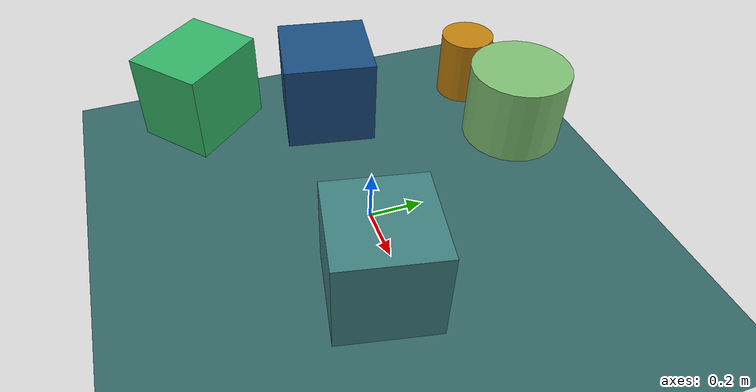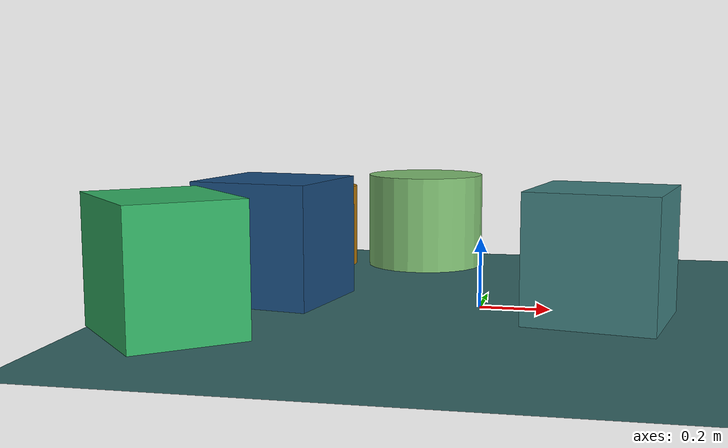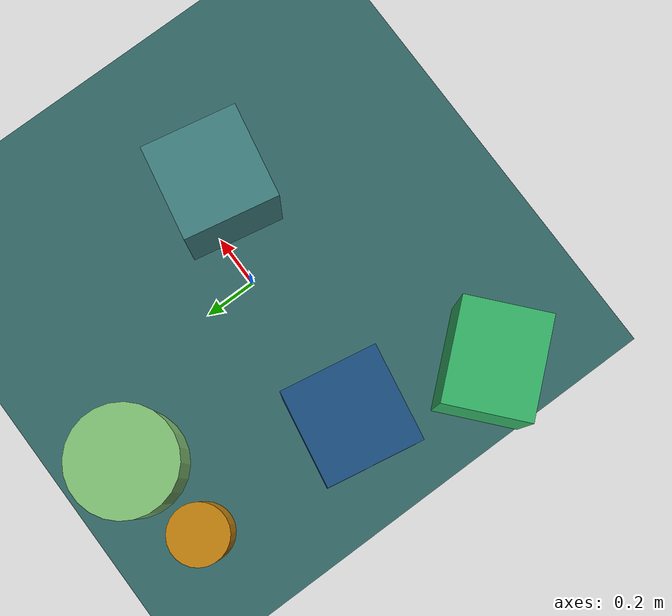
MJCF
<mujoco>
   <asset>
<texture type="skybox" builtin="gradient" rgb1="0.3 0.2 0.1" rgb2="0.9 1.0 1.0" width="500" height="500"/>
<texture name="gradient_0" builtin="gradient" rgb1="0.9 0.4 0.1" rgb2="0.6 0.6 0.0" width="500" height="500"/>
<texture name="gradient_1" builtin="gradient" rgb1="0.8 0.9 0.2" rgb2="0.2 0.6 0.7" width="500" height="500"/>
<texture name="checker_2" builtin="checker" rgb1="0.0 0.8 0.7" rgb2="0.5 0.2 0.3" width="500" height="500"/>
<texture name="flat_3" builtin="flat" rgb1="0.2 0.7 0.4" rgb2="0.2 0.7 0.4"  width="500" height="500"/>
<texture name="flat_4" builtin="flat" rgb1="0.1 0.3 0.5" rgb2="0.1 0.3 0.5"  width="500" height="500"/><material name="gradient_0_mat" reflectance="0.8572611428172867" texture="gradient_0" texuniform="true"/>
<material name="gradient_1_mat" reflectance="0.3966406969366314" texture="gradient_1" texuniform="true"/>
<material name="checker_2_mat" reflectance="0.1785028301457473" texrepeat="2 2" texture="checker_2" texuniform="false" />
<material name="flat_3_mat" reflectance="0.0652576010653867" texture="flat_3" texuniform="true"/>
<material name="flat_4_mat" reflectance="0.8744803643991376" texture="flat_4" texuniform="true"/>
   </asset>

   <worldbody>
     <geom type="plane" size="1 1 0.1" rgba="0.2 0.4 0.4 1" />
<light pos="0.987518451173875 -0.8537523778646092 2" dir="0 0 -1" cutoff="90" diffuse="1 1 1" specular="1 1 1"/>
<geom type="cylinder" pos="-0.63 0.67 0.14" size="0.11 0.14 0.14" material="gradient_0_mat" euler="0 0 55" />
<geom type="cylinder" pos="-0.28 0.73 0.16" size="0.2 0.16 0.16" material="gradient_1_mat" euler="0 0 82" />
<geom type="box" pos="0.34 -0.09 0.18" size="0.18 0.18 0.18" material="checker_2_mat" euler="0 0 79" />
<geom type="box" pos="-0.76 -0.49 0.18" size="0.16 0.19 0.18" material="flat_3_mat" euler="0 0 41" />
<geom type="box" pos="-0.62 0.02 0.18" size="0.18 0.18 0.18" material="flat_4_mat" euler="0 0 80" /><camera euler="60 0 180" fovy="60" name="camera1" pos="-0.2 -1.5 1"></camera>   </worldbody>
   <visual>
      <headlight diffuse="0.7 0.7 0.7"/>
   </visual>
</mujoco>
